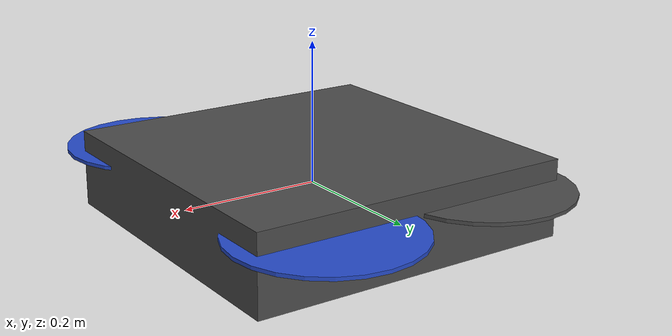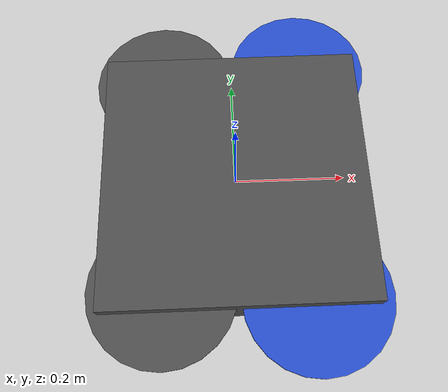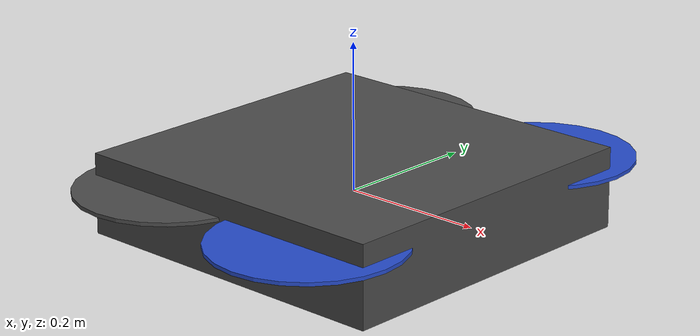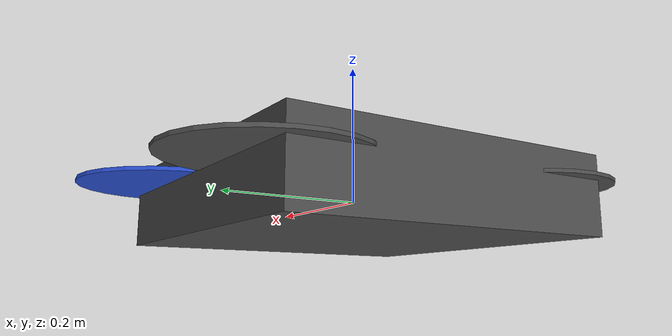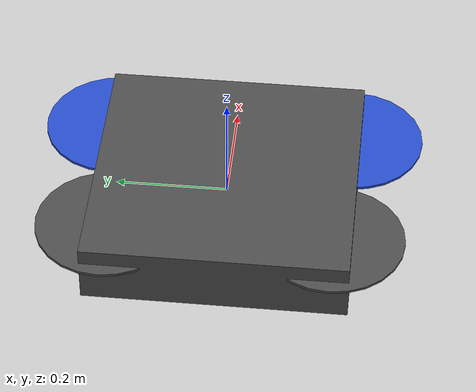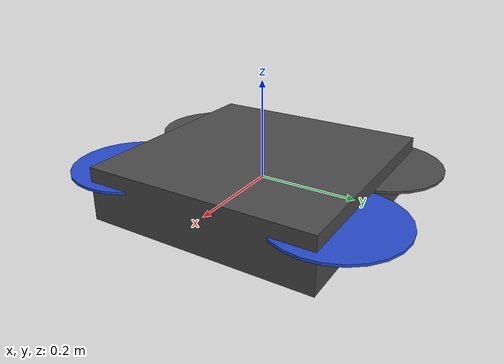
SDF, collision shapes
<?xml version='1.0'?>
<sdf version='1.7'>
  <model name='iris_fpv_cam_down'>
    <link name='iris::base_link'>
      <inertial>
        <pose>0 0 0 0 -0 0</pose>
        <mass>1.5</mass>
        <inertia>
          <ixx>0.029125</ixx>
          <ixy>0</ixy>
          <ixz>0</ixz>
          <iyy>0.029125</iyy>
          <iyz>0</iyz>
          <izz>0.055225</izz>
        </inertia>
      </inertial>
      <pose>0 0 0 0 -0 0</pose>
      <self_collide>0</self_collide>
      <enable_wind>0</enable_wind>
      <kinematic>0</kinematic>
      <visual name='base_link_inertia_visual'>
        <pose>0 0 0 0 -0 0</pose>
        <geometry>
          <mesh>
            <scale>1 1 1</scale>
            <uri>model://rotors_description/meshes/iris.stl</uri>
          </mesh>
        </geometry>
        <material>
          <script>
            <name>Gazebo/DarkGrey</name>
            <uri>file://media/materials/scripts/gazebo.material</uri>
          </script>
          <shader type='pixel'/>
        </material>
        <transparency>0</transparency>
        <cast_shadows>1</cast_shadows>
      </visual>
      <collision name='base_link_inertia_collision'>
        <laser_retro>0</laser_retro>
        <max_contacts>10</max_contacts>
        <pose>0 0 0 0 -0 0</pose>
        <geometry>
          <box>
            <size>0.47 0.47 0.11</size>
          </box>
        </geometry>
        <surface>
          <friction>
            <ode>
              <mu>1</mu>
              <mu2>1</mu2>
              <fdir1>0 0 0</fdir1>
              <slip1>0</slip1>
              <slip2>0</slip2>
            </ode>
            <torsional>
              <coefficient>1</coefficient>
              <patch_radius>0</patch_radius>
              <surface_radius>0</surface_radius>
              <use_patch_radius>1</use_patch_radius>
              <ode>
                <slip>0</slip>
              </ode>
            </torsional>
          </friction>
          <bounce>
            <restitution_coefficient>0</restitution_coefficient>
            <threshold>1e+06</threshold>
          </bounce>
          <contact>
            <collide_without_contact>0</collide_without_contact>
            <collide_without_contact_bitmask>1</collide_without_contact_bitmask>
            <collide_bitmask>1</collide_bitmask>
            <ode>
              <soft_cfm>0</soft_cfm>
              <soft_erp>0.2</soft_erp>
              <kp>1e+13</kp>
              <kd>1</kd>
              <max_vel>0</max_vel>
              <min_depth>0.001</min_depth>
            </ode>
            <bullet>
              <split_impulse>1</split_impulse>
              <split_impulse_penetration_threshold>-0.01</split_impulse_penetration_threshold>
              <soft_cfm>0</soft_cfm>
              <soft_erp>0.2</soft_erp>
              <kp>1e+13</kp>
              <kd>1</kd>
            </bullet>
          </contact>
        </surface>
      </collision>
    </link>
    <link name='fpv_cam::link'>
      <inertial>
        <mass>0.015</mass>
        <inertia>
          <ixx>4.15e-06</ixx>
          <ixy>0</ixy>
          <ixz>0</ixz>
          <iyy>2.407e-06</iyy>
          <iyz>0</iyz>
          <izz>2.407e-06</izz>
        </inertia>
        <pose>0 0 0 0 0 0</pose>
      </inertial>
      <sensor name='camera' type='camera'>
        <camera name='__default__'>
          <horizontal_fov>1.047</horizontal_fov>
          <image>
            <width>1080</width>
            <height>720</height>
          </image>
          <clip>
            <near>0.1</near>
            <far>100</far>
          </clip>
          <lens>
            <type>custom</type>
            <custom_function>
              <c1>1.05</c1>
              <c2>4</c2>
              <f>1</f>
              <fun>tan</fun>
            </custom_function>
            <scale_to_hfov>1</scale_to_hfov>
            <cutoff_angle>3.1415</cutoff_angle>
            <env_texture_size>1080</env_texture_size>
          </lens>
        </camera>
        <always_on>1</always_on>
        <update_rate>30</update_rate>
        <visualize>1</visualize>
        <plugin name='camera_plugin' filename='libgazebo_ros_camera.so'>
          <robotNamespace/>
          <alwaysOn>1</alwaysOn>
          <imageTopicName>image_raw</imageTopicName>
          <cameraInfoTopicName>camera_info</cameraInfoTopicName>
          <updateRate>30.0</updateRate>
          <cameraName>usb_cam</cameraName>
          <frameName>base_link</frameName>
          <CxPrime>320.5</CxPrime>
          <Cx>320.5</Cx>
          <Cy>240.5</Cy>
          <hackBaseline>0</hackBaseline>
          <focalLength>935.520828</focalLength>
          <distortionK1>0.0</distortionK1>
          <distortionK2>0.0</distortionK2>
          <distortionK3>0.0</distortionK3>
          <distortionT1>0.0</distortionT1>
          <distortionT2>0.0</distortionT2>
        </plugin>
        <plugin name='GstCameraPlugin' filename='libgazebo_gst_camera_plugin.so'>
          <robotNamespace/>
          <udpPort>5600</udpPort>
        </plugin>
      </sensor>
      <self_collide>0</self_collide>
      <kinematic>0</kinematic>
      <pose>0 0 0 0 1.5707 0</pose>
      <enable_wind>0</enable_wind>
      <visual name='visual'>
        <geometry>
          <box>
            <size>0.01 0.01 0.01</size>
          </box>
        </geometry>
        <material>
          <shader type='pixel'/>
        </material>
        <pose>0 0 0 0 -0 0</pose>
        <transparency>0</transparency>
        <cast_shadows>1</cast_shadows>
      </visual>
      <collision name='collision'>
        <laser_retro>0</laser_retro>
        <max_contacts>10</max_contacts>
        <pose>0 0 0 0 -0 0</pose>
        <geometry>
          <box>
            <size>0.01 0.01 0.01</size>
          </box>
        </geometry>
        <surface>
          <friction>
            <ode>
              <mu>1</mu>
              <mu2>1</mu2>
              <fdir1>0 0 0</fdir1>
              <slip1>0</slip1>
              <slip2>0</slip2>
            </ode>
            <torsional>
              <coefficient>1</coefficient>
              <patch_radius>0</patch_radius>
              <surface_radius>0</surface_radius>
              <use_patch_radius>1</use_patch_radius>
              <ode>
                <slip>0</slip>
              </ode>
            </torsional>
          </friction>
          <bounce>
            <restitution_coefficient>0</restitution_coefficient>
            <threshold>1e+06</threshold>
          </bounce>
          <contact>
            <collide_without_contact>0</collide_without_contact>
            <collide_without_contact_bitmask>1</collide_without_contact_bitmask>
            <collide_bitmask>1</collide_bitmask>
            <ode>
              <soft_cfm>0</soft_cfm>
              <soft_erp>0.2</soft_erp>
              <kp>1e+13</kp>
              <kd>1</kd>
              <max_vel>0.01</max_vel>
              <min_depth>0</min_depth>
            </ode>
            <bullet>
              <split_impulse>1</split_impulse>
              <split_impulse_penetration_threshold>-0.01</split_impulse_penetration_threshold>
              <soft_cfm>0</soft_cfm>
              <soft_erp>0.2</soft_erp>
              <kp>1e+13</kp>
              <kd>1</kd>
            </bullet>
          </contact>
        </surface>
      </collision>
    </link>
    <link name='iris::/imu_link'>
      <pose>0 0 0 0 -0 0</pose>
      <inertial>
        <pose>0 0 0 0 -0 0</pose>
        <mass>0.015</mass>
        <inertia>
          <ixx>1e-05</ixx>
          <ixy>0</ixy>
          <ixz>0</ixz>
          <iyy>1e-05</iyy>
          <iyz>0</iyz>
          <izz>1e-05</izz>
        </inertia>
      </inertial>
      <self_collide>0</self_collide>
      <enable_wind>0</enable_wind>
      <kinematic>0</kinematic>
    </link>
    <link name='iris::rotor_0'>
      <pose>0.13 -0.22 0.023 0 -0 0</pose>
      <inertial>
        <pose>0 0 0 0 -0 0</pose>
        <mass>0.005</mass>
        <inertia>
          <ixx>9.75e-07</ixx>
          <ixy>0</ixy>
          <ixz>0</ixz>
          <iyy>0.000273104</iyy>
          <iyz>0</iyz>
          <izz>0.000274004</izz>
        </inertia>
      </inertial>
      <self_collide>0</self_collide>
      <enable_wind>0</enable_wind>
      <kinematic>0</kinematic>
      <visual name='rotor_0_visual'>
        <pose>0 0 0 0 -0 0</pose>
        <geometry>
          <mesh>
            <scale>1 1 1</scale>
            <uri>model://rotors_description/meshes/iris_prop_ccw.dae</uri>
          </mesh>
        </geometry>
        <material>
          <script>
            <name>Gazebo/Blue</name>
            <uri>file://media/materials/scripts/gazebo.material</uri>
          </script>
          <shader type='pixel'/>
        </material>
        <transparency>0</transparency>
        <cast_shadows>1</cast_shadows>
      </visual>
      <collision name='rotor_0_collision'>
        <laser_retro>0</laser_retro>
        <max_contacts>10</max_contacts>
        <pose>0 0 0 0 -0 0</pose>
        <geometry>
          <cylinder>
            <radius>0.128</radius>
            <length>0.005</length>
          </cylinder>
        </geometry>
        <surface>
          <friction>
            <ode>
              <mu>1</mu>
              <mu2>1</mu2>
              <fdir1>0 0 0</fdir1>
              <slip1>0</slip1>
              <slip2>0</slip2>
            </ode>
            <torsional>
              <coefficient>1</coefficient>
              <patch_radius>0</patch_radius>
              <surface_radius>0</surface_radius>
              <use_patch_radius>1</use_patch_radius>
              <ode>
                <slip>0</slip>
              </ode>
            </torsional>
          </friction>
          <bounce>
            <restitution_coefficient>0</restitution_coefficient>
            <threshold>1e+06</threshold>
          </bounce>
          <contact>
            <collide_without_contact>0</collide_without_contact>
            <collide_without_contact_bitmask>1</collide_without_contact_bitmask>
            <collide_bitmask>1</collide_bitmask>
            <ode>
              <soft_cfm>0</soft_cfm>
              <soft_erp>0.2</soft_erp>
              <kp>1e+13</kp>
              <kd>1</kd>
              <max_vel>0.01</max_vel>
              <min_depth>0</min_depth>
            </ode>
            <bullet>
              <split_impulse>1</split_impulse>
              <split_impulse_penetration_threshold>-0.01</split_impulse_penetration_threshold>
              <soft_cfm>0</soft_cfm>
              <soft_erp>0.2</soft_erp>
              <kp>1e+13</kp>
              <kd>1</kd>
            </bullet>
          </contact>
        </surface>
      </collision>
    </link>
    <link name='iris::rotor_1'>
      <pose>-0.13 0.2 0.023 0 -0 0</pose>
      <inertial>
        <pose>0 0 0 0 -0 0</pose>
        <mass>0.005</mass>
        <inertia>
          <ixx>9.75e-07</ixx>
          <ixy>0</ixy>
          <ixz>0</ixz>
          <iyy>0.000273104</iyy>
          <iyz>0</iyz>
          <izz>0.000274004</izz>
        </inertia>
      </inertial>
      <self_collide>0</self_collide>
      <enable_wind>0</enable_wind>
      <kinematic>0</kinematic>
      <visual name='rotor_1_visual'>
        <pose>0 0 0 0 -0 0</pose>
        <geometry>
          <mesh>
            <scale>1 1 1</scale>
            <uri>model://rotors_description/meshes/iris_prop_ccw.dae</uri>
          </mesh>
        </geometry>
        <material>
          <script>
            <name>Gazebo/DarkGrey</name>
            <uri>file://media/materials/scripts/gazebo.material</uri>
          </script>
          <shader type='pixel'/>
        </material>
        <transparency>0</transparency>
        <cast_shadows>1</cast_shadows>
      </visual>
      <collision name='rotor_1_collision'>
        <laser_retro>0</laser_retro>
        <max_contacts>10</max_contacts>
        <pose>0 0 0 0 -0 0</pose>
        <geometry>
          <cylinder>
            <radius>0.128</radius>
            <length>0.005</length>
          </cylinder>
        </geometry>
        <surface>
          <friction>
            <ode>
              <mu>1</mu>
              <mu2>1</mu2>
              <fdir1>0 0 0</fdir1>
              <slip1>0</slip1>
              <slip2>0</slip2>
            </ode>
            <torsional>
              <coefficient>1</coefficient>
              <patch_radius>0</patch_radius>
              <surface_radius>0</surface_radius>
              <use_patch_radius>1</use_patch_radius>
              <ode>
                <slip>0</slip>
              </ode>
            </torsional>
          </friction>
          <bounce>
            <restitution_coefficient>0</restitution_coefficient>
            <threshold>1e+06</threshold>
          </bounce>
          <contact>
            <collide_without_contact>0</collide_without_contact>
            <collide_without_contact_bitmask>1</collide_without_contact_bitmask>
            <collide_bitmask>1</collide_bitmask>
            <ode>
              <soft_cfm>0</soft_cfm>
              <soft_erp>0.2</soft_erp>
              <kp>1e+13</kp>
              <kd>1</kd>
              <max_vel>0.01</max_vel>
              <min_depth>0</min_depth>
            </ode>
            <bullet>
              <split_impulse>1</split_impulse>
              <split_impulse_penetration_threshold>-0.01</split_impulse_penetration_threshold>
              <soft_cfm>0</soft_cfm>
              <soft_erp>0.2</soft_erp>
              <kp>1e+13</kp>
              <kd>1</kd>
            </bullet>
          </contact>
        </surface>
      </collision>
    </link>
    <link name='iris::rotor_2'>
      <pose>0.13 0.22 0.023 0 -0 0</pose>
      <inertial>
        <pose>0 0 0 0 -0 0</pose>
        <mass>0.005</mass>
        <inertia>
          <ixx>9.75e-07</ixx>
          <ixy>0</ixy>
          <ixz>0</ixz>
          <iyy>0.000273104</iyy>
          <iyz>0</iyz>
          <izz>0.000274004</izz>
        </inertia>
      </inertial>
      <self_collide>0</self_collide>
      <enable_wind>0</enable_wind>
      <kinematic>0</kinematic>
      <visual name='rotor_2_visual'>
        <pose>0 0 0 0 -0 0</pose>
        <geometry>
          <mesh>
            <scale>1 1 1</scale>
            <uri>model://rotors_description/meshes/iris_prop_cw.dae</uri>
          </mesh>
        </geometry>
        <material>
          <script>
            <name>Gazebo/Blue</name>
            <uri>file://media/materials/scripts/gazebo.material</uri>
          </script>
          <shader type='pixel'/>
        </material>
        <transparency>0</transparency>
        <cast_shadows>1</cast_shadows>
      </visual>
      <collision name='rotor_2_collision'>
        <laser_retro>0</laser_retro>
        <max_contacts>10</max_contacts>
        <pose>0 0 0 0 -0 0</pose>
        <geometry>
          <cylinder>
            <radius>0.128</radius>
            <length>0.005</length>
          </cylinder>
        </geometry>
        <surface>
          <friction>
            <ode>
              <mu>1</mu>
              <mu2>1</mu2>
              <fdir1>0 0 0</fdir1>
              <slip1>0</slip1>
              <slip2>0</slip2>
            </ode>
            <torsional>
              <coefficient>1</coefficient>
              <patch_radius>0</patch_radius>
              <surface_radius>0</surface_radius>
              <use_patch_radius>1</use_patch_radius>
              <ode>
                <slip>0</slip>
              </ode>
            </torsional>
          </friction>
          <bounce>
            <restitution_coefficient>0</restitution_coefficient>
            <threshold>1e+06</threshold>
          </bounce>
          <contact>
            <collide_without_contact>0</collide_without_contact>
            <collide_without_contact_bitmask>1</collide_without_contact_bitmask>
            <collide_bitmask>1</collide_bitmask>
            <ode>
              <soft_cfm>0</soft_cfm>
              <soft_erp>0.2</soft_erp>
              <kp>1e+13</kp>
              <kd>1</kd>
              <max_vel>0.01</max_vel>
              <min_depth>0</min_depth>
            </ode>
            <bullet>
              <split_impulse>1</split_impulse>
              <split_impulse_penetration_threshold>-0.01</split_impulse_penetration_threshold>
              <soft_cfm>0</soft_cfm>
              <soft_erp>0.2</soft_erp>
              <kp>1e+13</kp>
              <kd>1</kd>
            </bullet>
          </contact>
        </surface>
      </collision>
    </link>
    <link name='iris::rotor_3'>
      <pose>-0.13 -0.2 0.023 0 -0 0</pose>
      <inertial>
        <pose>0 0 0 0 -0 0</pose>
        <mass>0.005</mass>
        <inertia>
          <ixx>9.75e-07</ixx>
          <ixy>0</ixy>
          <ixz>0</ixz>
          <iyy>0.000273104</iyy>
          <iyz>0</iyz>
          <izz>0.000274004</izz>
        </inertia>
      </inertial>
      <self_collide>0</self_collide>
      <enable_wind>0</enable_wind>
      <kinematic>0</kinematic>
      <visual name='rotor_3_visual'>
        <pose>0 0 0 0 -0 0</pose>
        <geometry>
          <mesh>
            <scale>1 1 1</scale>
            <uri>model://rotors_description/meshes/iris_prop_cw.dae</uri>
          </mesh>
        </geometry>
        <material>
          <script>
            <name>Gazebo/DarkGrey</name>
            <uri>file://media/materials/scripts/gazebo.material</uri>
          </script>
          <shader type='pixel'/>
        </material>
        <transparency>0</transparency>
        <cast_shadows>1</cast_shadows>
      </visual>
      <collision name='rotor_3_collision'>
        <laser_retro>0</laser_retro>
        <max_contacts>10</max_contacts>
        <pose>0 0 0 0 -0 0</pose>
        <geometry>
          <cylinder>
            <radius>0.128</radius>
            <length>0.005</length>
          </cylinder>
        </geometry>
        <surface>
          <friction>
            <ode>
              <mu>1</mu>
              <mu2>1</mu2>
              <fdir1>0 0 0</fdir1>
              <slip1>0</slip1>
              <slip2>0</slip2>
            </ode>
            <torsional>
              <coefficient>1</coefficient>
              <patch_radius>0</patch_radius>
              <surface_radius>0</surface_radius>
              <use_patch_radius>1</use_patch_radius>
              <ode>
                <slip>0</slip>
              </ode>
            </torsional>
          </friction>
          <bounce>
            <restitution_coefficient>0</restitution_coefficient>
            <threshold>1e+06</threshold>
          </bounce>
          <contact>
            <collide_without_contact>0</collide_without_contact>
            <collide_without_contact_bitmask>1</collide_without_contact_bitmask>
            <collide_bitmask>1</collide_bitmask>
            <ode>
              <soft_cfm>0</soft_cfm>
              <soft_erp>0.2</soft_erp>
              <kp>1e+13</kp>
              <kd>1</kd>
              <max_vel>0.01</max_vel>
              <min_depth>0</min_depth>
            </ode>
            <bullet>
              <split_impulse>1</split_impulse>
              <split_impulse_penetration_threshold>-0.01</split_impulse_penetration_threshold>
              <soft_cfm>0</soft_cfm>
              <soft_erp>0.2</soft_erp>
              <kp>1e+13</kp>
              <kd>1</kd>
            </bullet>
          </contact>
        </surface>
      </collision>
    </link>
    <joint name='fpv_cam_joint' type='fixed'>
      <parent>iris::base_link</parent>
      <child>fpv_cam::link</child>
      <pose>0 0 0 0 -0 0</pose>
      <physics>
        <ode>
          <limit>
            <cfm>0</cfm>
            <erp>0.2</erp>
          </limit>
          <suspension>
            <cfm>0</cfm>
            <erp>0.2</erp>
          </suspension>
        </ode>
      </physics>
    </joint>
    <joint name='iris::/imu_joint' type='revolute'>
      <parent>iris::base_link</parent>
      <child>iris::/imu_link</child>
      <pose>0 0 0 0 -0 0</pose>
      <axis>
        <xyz>1 0 0</xyz>
        <limit>
          <lower>0</lower>
          <upper>0</upper>
          <effort>0</effort>
          <velocity>0</velocity>
        </limit>
        <dynamics>
          <spring_reference>0</spring_reference>
          <spring_stiffness>0</spring_stiffness>
          <damping>0</damping>
          <friction>0</friction>
        </dynamics>
      </axis>
      <physics>
        <ode>
          <limit>
            <cfm>0</cfm>
            <erp>0.2</erp>
          </limit>
          <suspension>
            <cfm>0</cfm>
            <erp>0.2</erp>
          </suspension>
        </ode>
      </physics>
    </joint>
    <joint name='iris::rotor_0_joint' type='revolute'>
      <parent>iris::base_link</parent>
      <child>iris::rotor_0</child>
      <pose>0 0 0 0 -0 0</pose>
      <axis>
        <xyz>0 0 1</xyz>
        <limit>
          <lower>-1e+16</lower>
          <upper>1e+16</upper>
          <effort>-1</effort>
          <velocity>-1</velocity>
        </limit>
        <dynamics>
          <spring_reference>0</spring_reference>
          <spring_stiffness>0</spring_stiffness>
          <damping>0</damping>
          <friction>0</friction>
        </dynamics>
      </axis>
      <physics>
        <ode>
          <limit>
            <cfm>0</cfm>
            <erp>0.2</erp>
          </limit>
          <suspension>
            <cfm>0</cfm>
            <erp>0.2</erp>
          </suspension>
        </ode>
      </physics>
    </joint>
    <joint name='iris::rotor_1_joint' type='revolute'>
      <parent>iris::base_link</parent>
      <child>iris::rotor_1</child>
      <pose>0 0 0 0 -0 0</pose>
      <axis>
        <xyz>0 0 1</xyz>
        <limit>
          <lower>-1e+16</lower>
          <upper>1e+16</upper>
          <effort>-1</effort>
          <velocity>-1</velocity>
        </limit>
        <dynamics>
          <spring_reference>0</spring_reference>
          <spring_stiffness>0</spring_stiffness>
          <damping>0</damping>
          <friction>0</friction>
        </dynamics>
      </axis>
      <physics>
        <ode>
          <limit>
            <cfm>0</cfm>
            <erp>0.2</erp>
          </limit>
          <suspension>
            <cfm>0</cfm>
            <erp>0.2</erp>
          </suspension>
        </ode>
      </physics>
    </joint>
    <joint name='iris::rotor_2_joint' type='revolute'>
      <parent>iris::base_link</parent>
      <child>iris::rotor_2</child>
      <pose>0 0 0 0 -0 0</pose>
      <axis>
        <xyz>0 0 1</xyz>
        <limit>
          <lower>-1e+16</lower>
          <upper>1e+16</upper>
          <effort>-1</effort>
          <velocity>-1</velocity>
        </limit>
        <dynamics>
          <spring_reference>0</spring_reference>
          <spring_stiffness>0</spring_stiffness>
          <damping>0</damping>
          <friction>0</friction>
        </dynamics>
      </axis>
      <physics>
        <ode>
          <limit>
            <cfm>0</cfm>
            <erp>0.2</erp>
          </limit>
          <suspension>
            <cfm>0</cfm>
            <erp>0.2</erp>
          </suspension>
        </ode>
      </physics>
    </joint>
    <joint name='iris::rotor_3_joint' type='revolute'>
      <parent>iris::base_link</parent>
      <child>iris::rotor_3</child>
      <pose>0 0 0 0 -0 0</pose>
      <axis>
        <xyz>0 0 1</xyz>
        <limit>
          <lower>-1e+16</lower>
          <upper>1e+16</upper>
          <effort>-1</effort>
          <velocity>-1</velocity>
        </limit>
        <dynamics>
          <spring_reference>0</spring_reference>
          <spring_stiffness>0</spring_stiffness>
          <damping>0</damping>
          <friction>0</friction>
        </dynamics>
      </axis>
      <physics>
        <ode>
          <limit>
            <cfm>0</cfm>
            <erp>0.2</erp>
          </limit>
          <suspension>
            <cfm>0</cfm>
            <erp>0.2</erp>
          </suspension>
        </ode>
      </physics>
    </joint>
    <static>0</static>
    <allow_auto_disable>1</allow_auto_disable>
    <plugin name='back_left_motor_model' filename='libgazebo_motor_model.so'>
      <robotNamespace/>
      <jointName>iris::rotor_1_joint</jointName>
      <linkName>iris::rotor_1</linkName>
      <turningDirection>ccw</turningDirection>
      <timeConstantUp>0.0125</timeConstantUp>
      <timeConstantDown>0.025</timeConstantDown>
      <maxRotVelocity>1100</maxRotVelocity>
      <motorConstant>8.54858e-06</motorConstant>
      <momentConstant>0.06</momentConstant>
      <commandSubTopic>/gazebo/command/motor_speed</commandSubTopic>
      <motorNumber>1</motorNumber>
      <rotorDragCoefficient>0.000175</rotorDragCoefficient>
      <rollingMomentCoefficient>1e-06</rollingMomentCoefficient>
      <motorSpeedPubTopic>/motor_speed/1</motorSpeedPubTopic>
      <rotorVelocitySlowdownSim>10</rotorVelocitySlowdownSim>
    </plugin>
    <plugin name='back_right_motor_model' filename='libgazebo_motor_model.so'>
      <robotNamespace/>
      <jointName>iris::rotor_3_joint</jointName>
      <linkName>iris::rotor_3</linkName>
      <turningDirection>cw</turningDirection>
      <timeConstantUp>0.0125</timeConstantUp>
      <timeConstantDown>0.025</timeConstantDown>
      <maxRotVelocity>1100</maxRotVelocity>
      <motorConstant>8.54858e-06</motorConstant>
      <momentConstant>0.06</momentConstant>
      <commandSubTopic>/gazebo/command/motor_speed</commandSubTopic>
      <motorNumber>3</motorNumber>
      <rotorDragCoefficient>0.000175</rotorDragCoefficient>
      <rollingMomentCoefficient>1e-06</rollingMomentCoefficient>
      <motorSpeedPubTopic>/motor_speed/3</motorSpeedPubTopic>
      <rotorVelocitySlowdownSim>10</rotorVelocitySlowdownSim>
    </plugin>
    <plugin name='barometer_plugin' filename='libgazebo_barometer_plugin.so'>
      <robotNamespace/>
      <pubRate>50</pubRate>
      <baroTopic>/baro</baroTopic>
    </plugin>
    <plugin name='front_left_motor_model' filename='libgazebo_motor_model.so'>
      <robotNamespace/>
      <jointName>iris::rotor_2_joint</jointName>
      <linkName>iris::rotor_2</linkName>
      <turningDirection>cw</turningDirection>
      <timeConstantUp>0.0125</timeConstantUp>
      <timeConstantDown>0.025</timeConstantDown>
      <maxRotVelocity>1100</maxRotVelocity>
      <motorConstant>8.54858e-06</motorConstant>
      <momentConstant>0.06</momentConstant>
      <commandSubTopic>/gazebo/command/motor_speed</commandSubTopic>
      <motorNumber>2</motorNumber>
      <rotorDragCoefficient>0.000175</rotorDragCoefficient>
      <rollingMomentCoefficient>1e-06</rollingMomentCoefficient>
      <motorSpeedPubTopic>/motor_speed/2</motorSpeedPubTopic>
      <rotorVelocitySlowdownSim>10</rotorVelocitySlowdownSim>
    </plugin>
    <plugin name='front_right_motor_model' filename='libgazebo_motor_model.so'>
      <robotNamespace/>
      <jointName>iris::rotor_0_joint</jointName>
      <linkName>iris::rotor_0</linkName>
      <turningDirection>ccw</turningDirection>
      <timeConstantUp>0.0125</timeConstantUp>
      <timeConstantDown>0.025</timeConstantDown>
      <maxRotVelocity>1100</maxRotVelocity>
      <motorConstant>8.54858e-06</motorConstant>
      <momentConstant>0.06</momentConstant>
      <commandSubTopic>/gazebo/command/motor_speed</commandSubTopic>
      <motorNumber>0</motorNumber>
      <rotorDragCoefficient>0.000175</rotorDragCoefficient>
      <rollingMomentCoefficient>1e-06</rollingMomentCoefficient>
      <motorSpeedPubTopic>/motor_speed/0</motorSpeedPubTopic>
      <rotorVelocitySlowdownSim>10</rotorVelocitySlowdownSim>
    </plugin>
    <plugin name='gps_plugin' filename='libgazebo_gps_plugin.so'>
      <robotNamespace/>
      <gpsNoise>1</gpsNoise>
    </plugin>
    <plugin name='magnetometer_plugin' filename='libgazebo_magnetometer_plugin.so'>
      <robotNamespace/>
      <pubRate>100</pubRate>
      <noiseDensity>0.0004</noiseDensity>
      <randomWalk>6.4e-06</randomWalk>
      <biasCorrelationTime>600</biasCorrelationTime>
      <magTopic>/mag</magTopic>
    </plugin>
    <plugin name='mavlink_interface' filename='libgazebo_mavlink_interface.so'>
      <robotNamespace/>
      <imuSubTopic>/imu</imuSubTopic>
      <gpsSubTopic>/gps</gpsSubTopic>
      <magSubTopic>/mag</magSubTopic>
      <baroSubTopic>/baro</baroSubTopic>
      <mavlink_addr>INADDR_ANY</mavlink_addr>
      <mavlink_udp_port>14560</mavlink_udp_port>
      <mavlink_tcp_port>4560</mavlink_tcp_port>
      <serialEnabled>0</serialEnabled>
      <serialDevice>/dev/ttyACM0</serialDevice>
      <baudRate>921600</baudRate>
      <qgc_addr>INADDR_ANY</qgc_addr>
      <qgc_udp_port>14550</qgc_udp_port>
      <sdk_addr>INADDR_ANY</sdk_addr>
      <sdk_udp_port>14540</sdk_udp_port>
      <hil_mode>0</hil_mode>
      <hil_state_level>0</hil_state_level>
      <vehicle_is_tailsitter>0</vehicle_is_tailsitter>
      <send_vision_estimation>0</send_vision_estimation>
      <send_odometry>1</send_odometry>
      <enable_lockstep>1</enable_lockstep>
      <use_tcp>1</use_tcp>
      <motorSpeedCommandPubTopic>/gazebo/command/motor_speed</motorSpeedCommandPubTopic>
      <control_channels>
        <channel name='rotor1'>
          <input_index>0</input_index>
          <input_offset>0</input_offset>
          <input_scaling>1000</input_scaling>
          <zero_position_disarmed>0</zero_position_disarmed>
          <zero_position_armed>100</zero_position_armed>
          <joint_control_type>velocity</joint_control_type>
        </channel>
        <channel name='rotor2'>
          <input_index>1</input_index>
          <input_offset>0</input_offset>
          <input_scaling>1000</input_scaling>
          <zero_position_disarmed>0</zero_position_disarmed>
          <zero_position_armed>100</zero_position_armed>
          <joint_control_type>velocity</joint_control_type>
        </channel>
        <channel name='rotor3'>
          <input_index>2</input_index>
          <input_offset>0</input_offset>
          <input_scaling>1000</input_scaling>
          <zero_position_disarmed>0</zero_position_disarmed>
          <zero_position_armed>100</zero_position_armed>
          <joint_control_type>velocity</joint_control_type>
        </channel>
        <channel name='rotor4'>
          <input_index>3</input_index>
          <input_offset>0</input_offset>
          <input_scaling>1000</input_scaling>
          <zero_position_disarmed>0</zero_position_disarmed>
          <zero_position_armed>100</zero_position_armed>
          <joint_control_type>velocity</joint_control_type>
        </channel>
        <channel name='rotor5'>
          <input_index>4</input_index>
          <input_offset>1</input_offset>
          <input_scaling>324.6</input_scaling>
          <zero_position_disarmed>0</zero_position_disarmed>
          <zero_position_armed>0</zero_position_armed>
          <joint_control_type>velocity</joint_control_type>
          <joint_control_pid>
            <p>0.1</p>
            <i>0</i>
            <d>0</d>
            <iMax>0.0</iMax>
            <iMin>0.0</iMin>
            <cmdMax>2</cmdMax>
            <cmdMin>-2</cmdMin>
          </joint_control_pid>
          <joint_name>zephyr_delta_wing::propeller_joint</joint_name>
        </channel>
        <channel name='rotor6'>
          <input_index>5</input_index>
          <input_offset>0</input_offset>
          <input_scaling>0.524</input_scaling>
          <zero_position_disarmed>0</zero_position_disarmed>
          <zero_position_armed>0</zero_position_armed>
          <joint_control_type>position</joint_control_type>
          <joint_name>zephyr_delta_wing::flap_left_joint</joint_name>
          <joint_control_pid>
            <p>10.0</p>
            <i>0</i>
            <d>0</d>
            <iMax>0</iMax>
            <iMin>0</iMin>
            <cmdMax>20</cmdMax>
            <cmdMin>-20</cmdMin>
          </joint_control_pid>
        </channel>
        <channel name='rotor7'>
          <input_index>6</input_index>
          <input_offset>0</input_offset>
          <input_scaling>0.524</input_scaling>
          <zero_position_disarmed>0</zero_position_disarmed>
          <zero_position_armed>0</zero_position_armed>
          <joint_control_type>position</joint_control_type>
          <joint_name>zephyr_delta_wing::flap_right_joint</joint_name>
          <joint_control_pid>
            <p>10.0</p>
            <i>0</i>
            <d>0</d>
            <iMax>0</iMax>
            <iMin>0</iMin>
            <cmdMax>20</cmdMax>
            <cmdMin>-20</cmdMin>
          </joint_control_pid>
        </channel>
        <channel name='rotor8'>
          <input_index>7</input_index>
          <input_offset>0</input_offset>
          <input_scaling>0.524</input_scaling>
          <zero_position_disarmed>0</zero_position_disarmed>
          <zero_position_armed>0</zero_position_armed>
          <joint_control_type>position</joint_control_type>
        </channel>
      </control_channels>
    </plugin>
    <plugin name='rosbag' filename='libgazebo_multirotor_base_plugin.so'>
      <robotNamespace/>
      <linkName>iris::base_link</linkName>
      <rotorVelocitySlowdownSim>10</rotorVelocitySlowdownSim>
    </plugin>
    <plugin name='rotors_gazebo_imu_plugin' filename='libgazebo_imu_plugin.so'>
      <robotNamespace/>
      <linkName>iris::/imu_link</linkName>
      <imuTopic>/imu</imuTopic>
      <gyroscopeNoiseDensity>0.00018665</gyroscopeNoiseDensity>
      <gyroscopeRandomWalk>3.8785e-05</gyroscopeRandomWalk>
      <gyroscopeBiasCorrelationTime>1000.0</gyroscopeBiasCorrelationTime>
      <gyroscopeTurnOnBiasSigma>0.0087</gyroscopeTurnOnBiasSigma>
      <accelerometerNoiseDensity>0.00186</accelerometerNoiseDensity>
      <accelerometerRandomWalk>0.006</accelerometerRandomWalk>
      <accelerometerBiasCorrelationTime>300.0</accelerometerBiasCorrelationTime>
      <accelerometerTurnOnBiasSigma>0.196</accelerometerTurnOnBiasSigma>
    </plugin>
  </model>
</sdf>
